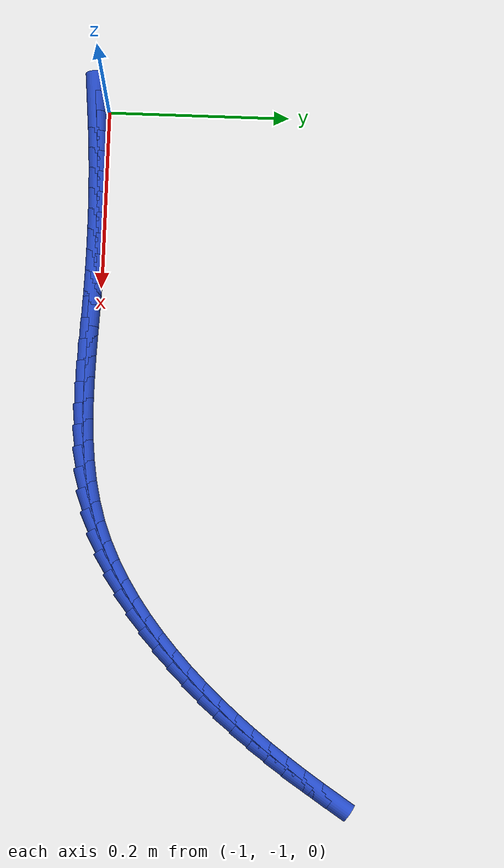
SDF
<sdf version="1.6">
 <world name="default">
  <model name="ground_plane">
   <static>1</static>
   <link name="link">
    <collision name="collision">
     <geometry><plane><normal>0 0 1</normal><size>100 100</size></plane></geometry>
     <surface><friction><ode><mu>100</mu><mu2>50</mu2></ode></friction></surface>
    </collision>
    <visual name="visual">
     <cast_shadows>0</cast_shadows>
     <geometry><plane><normal>0 0 1</normal><size>100 100</size></plane></geometry>
     <material>
      <script><uri>file://media/materials/scripts/gazebo.material</uri><name>Gazebo/WhiteGlow</name></script>
     </material>
    </visual>
   </link>
  </model>
  <model name="line">
   <link name="link_219">
    <pose>-1.0013469479623762 -1.014483170221935 0.01 0 1.57 0.0871544361112992</pose>
    <collision name="collision">
     <geometry><cylinder><radius>0.01</radius><length>0.08</length></cylinder></geometry>
    </collision>
    <visual name="visual">
     <material>
      <script><name>Gazebo/Blue</name><uri>file://media/materials/scripts/gazebo.material</uri></script>
     </material>
     <geometry><cylinder><radius>0.01</radius><length>0.08</length></cylinder></geometry>
    </visual>
   </link>
   <link name="link_220">
    <pose>-0.9786639839904309 -1.0125012285371393 0.01 0 1.57 0.07128460651138807</pose>
    <collision name="collision">
     <geometry><cylinder><radius>0.01</radius><length>0.08</length></cylinder></geometry>
    </collision>
    <visual name="visual">
     <material>
      <script><name>Gazebo/Blue</name><uri>file://media/materials/scripts/gazebo.material</uri></script>
     </material>
     <geometry><cylinder><radius>0.01</radius><length>0.08</length></cylinder></geometry>
    </visual>
   </link>
   <link name="link_221">
    <pose>-0.955876682412855 -1.01087408767381 0.01 0 1.57 0.0559129979954949</pose>
    <collision name="collision">
     <geometry><cylinder><radius>0.01</radius><length>0.08</length></cylinder></geometry>
    </collision>
    <visual name="visual">
     <material>
      <script><name>Gazebo/Blue</name><uri>file://media/materials/scripts/gazebo.material</uri></script>
     </material>
     <geometry><cylinder><radius>0.01</radius><length>0.08</length></cylinder></geometry>
    </visual>
   </link>
   <link name="link_222">
    <pose>-0.9329859396896257 -1.0095928621940413 0.01 0 1.57 0.04104090630134661</pose>
    <collision name="collision">
     <geometry><cylinder><radius>0.01</radius><length>0.08</length></cylinder></geometry>
    </collision>
    <visual name="visual">
     <material>
      <script><name>Gazebo/Blue</name><uri>file://media/materials/scripts/gazebo.material</uri></script>
     </material>
     <geometry><cylinder><radius>0.01</radius><length>0.08</length></cylinder></geometry>
    </visual>
   </link>
   <link name="link_223">
    <pose>-0.909992652280722 -1.0086486666599277 0.01 0 1.57 0.02666839965668159</pose>
    <collision name="collision">
     <geometry><cylinder><radius>0.01</radius><length>0.08</length></cylinder></geometry>
    </collision>
    <visual name="visual">
     <material>
      <script><name>Gazebo/Blue</name><uri>file://media/materials/scripts/gazebo.material</uri></script>
     </material>
     <geometry><cylinder><radius>0.01</radius><length>0.08</length></cylinder></geometry>
    </visual>
   </link>
   <link name="link_224">
    <pose>-0.8868977166461216 -1.0080326156335635 0.01 0 1.57 0.012794437022226709</pose>
    <collision name="collision">
     <geometry><cylinder><radius>0.01</radius><length>0.08</length></cylinder></geometry>
    </collision>
    <visual name="visual">
     <material>
      <script><name>Gazebo/Blue</name><uri>file://media/materials/scripts/gazebo.material</uri></script>
     </material>
     <geometry><cylinder><radius>0.01</radius><length>0.08</length></cylinder></geometry>
    </visual>
   </link>
   <link name="link_225">
    <pose>-0.8637020292458032 -1.007735823677044 0.01 0 1.57 -0.0005830159894517877</pose>
    <collision name="collision">
     <geometry><cylinder><radius>0.01</radius><length>0.08</length></cylinder></geometry>
    </collision>
    <visual name="visual">
     <material>
      <script><name>Gazebo/Blue</name><uri>file://media/materials/scripts/gazebo.material</uri></script>
     </material>
     <geometry><cylinder><radius>0.01</radius><length>0.08</length></cylinder></geometry>
    </visual>
   </link>
   <link name="link_226">
    <pose>-0.840406486539745 -1.0077494053524634 0.01 0 1.57 -0.013466874763109773</pose>
    <collision name="collision">
     <geometry><cylinder><radius>0.01</radius><length>0.08</length></cylinder></geometry>
    </collision>
    <visual name="visual">
     <material>
      <script><name>Gazebo/Blue</name><uri>file://media/materials/scripts/gazebo.material</uri></script>
     </material>
     <geometry><cylinder><radius>0.01</radius><length>0.08</length></cylinder></geometry>
    </visual>
   </link>
   <link name="link_227">
    <pose>-0.8170119849879252 -1.0080644752219163 0.01 0 1.57 -0.025856092680373494</pose>
    <collision name="collision">
     <geometry><cylinder><radius>0.01</radius><length>0.08</length></cylinder></geometry>
    </collision>
    <visual name="visual">
     <material>
      <script><name>Gazebo/Blue</name><uri>file://media/materials/scripts/gazebo.material</uri></script>
     </material>
     <geometry><cylinder><radius>0.01</radius><length>0.08</length></cylinder></geometry>
    </visual>
   </link>
   <link name="link_228">
    <pose>-0.7935194543937023 -1.0086720356686116 0.01 0 1.57 -0.03593926502927649</pose>
    <collision name="collision">
     <geometry><cylinder><radius>0.01</radius><length>0.08</length></cylinder></geometry>
    </collision>
    <visual name="visual">
     <material>
      <script><name>Gazebo/Blue</name><uri>file://media/materials/scripts/gazebo.material</uri></script>
     </material>
     <geometry><cylinder><radius>0.01</radius><length>0.08</length></cylinder></geometry>
    </visual>
   </link>
   <link name="link_229">
    <pose>-0.7699427119167445 -1.0095197314664413 0.01 0 1.57 -0.03922174190042788</pose>
    <collision name="collision">
     <geometry><cylinder><radius>0.01</radius><length>0.08</length></cylinder></geometry>
    </collision>
    <visual name="visual">
     <material>
      <script><name>Gazebo/Blue</name><uri>file://media/materials/scripts/gazebo.material</uri></script>
     </material>
     <geometry><cylinder><radius>0.01</radius><length>0.08</length></cylinder></geometry>
    </visual>
   </link>
   <link name="link_230">
    <pose>-0.7463279099182929 -1.0104464203732888 0.01 0 1.57 -0.03505726870997405</pose>
    <collision name="collision">
     <geometry><cylinder><radius>0.01</radius><length>0.08</length></cylinder></geometry>
    </collision>
    <visual name="visual">
     <material>
      <script><name>Gazebo/Blue</name><uri>file://media/materials/scripts/gazebo.material</uri></script>
     </material>
     <geometry><cylinder><radius>0.01</radius><length>0.08</length></cylinder></geometry>
    </visual>
   </link>
   <link name="link_231">
    <pose>-0.7227261909731965 -1.0112741713094544 0.01 0 1.57 -0.02340016952006652</pose>
    <collision name="collision">
     <geometry><cylinder><radius>0.01</radius><length>0.08</length></cylinder></geometry>
    </collision>
    <visual name="visual">
     <material>
      <script><name>Gazebo/Blue</name><uri>file://media/materials/scripts/gazebo.material</uri></script>
     </material>
     <geometry><cylinder><radius>0.01</radius><length>0.08</length></cylinder></geometry>
    </visual>
   </link>
   <link name="link_232">
    <pose>-0.6991886976563034 -1.0118250531952364 0.01 0 1.57 -0.004102156242686464</pose>
    <collision name="collision">
     <geometry><cylinder><radius>0.01</radius><length>0.08</length></cylinder></geometry>
    </collision>
    <visual name="visual">
     <material>
      <script><name>Gazebo/Blue</name><uri>file://media/materials/scripts/gazebo.material</uri></script>
     </material>
     <geometry><cylinder><radius>0.01</radius><length>0.08</length></cylinder></geometry>
    </visual>
   </link>
   <link name="link_233">
    <pose>-0.6757665725424626 -1.0119211349509343 0.01 0 1.57 0.023072029839129895</pose>
    <collision name="collision">
     <geometry><cylinder><radius>0.01</radius><length>0.08</length></cylinder></geometry>
    </collision>
    <visual name="visual">
     <material>
      <script><name>Gazebo/Blue</name><uri>file://media/materials/scripts/gazebo.material</uri></script>
     </material>
     <geometry><cylinder><radius>0.01</radius><length>0.08</length></cylinder></geometry>
    </visual>
   </link>
   <link name="link_234">
    <pose>-0.6525109582065213 -1.011384485496847 0.01 0 1.57 0.058415711169556225</pose>
    <collision name="collision">
     <geometry><cylinder><radius>0.01</radius><length>0.08</length></cylinder></geometry>
    </collision>
    <visual name="visual">
     <material>
      <script><name>Gazebo/Blue</name><uri>file://media/materials/scripts/gazebo.material</uri></script>
     </material>
     <geometry><cylinder><radius>0.01</radius><length>0.08</length></cylinder></geometry>
    </visual>
   </link>
   <link name="link_235">
    <pose>-0.6294729972233284 -1.010037173753274 0.01 0 1.57 0.10223306168648834</pose>
    <collision name="collision">
     <geometry><cylinder><radius>0.01</radius><length>0.08</length></cylinder></geometry>
    </collision>
    <visual name="visual">
     <material>
      <script><name>Gazebo/Blue</name><uri>file://media/materials/scripts/gazebo.material</uri></script>
     </material>
     <geometry><cylinder><radius>0.01</radius><length>0.08</length></cylinder></geometry>
    </visual>
   </link>
   <link name="link_236">
    <pose>-0.6067038321677323 -1.007701268640514 0.01 0 1.57 0.1547679205163647</pose>
    <collision name="collision">
     <geometry><cylinder><radius>0.01</radius><length>0.08</length></cylinder></geometry>
    </collision>
    <visual name="visual">
     <material>
      <script><name>Gazebo/Blue</name><uri>file://media/materials/scripts/gazebo.material</uri></script>
     </material>
     <geometry><cylinder><radius>0.01</radius><length>0.08</length></cylinder></geometry>
    </visual>
   </link>
   <link name="link_237">
    <pose>-0.5842546056145818 -1.0041988390788672 0.01 0 1.57 0.21610497535145173</pose>
    <collision name="collision">
     <geometry><cylinder><radius>0.01</radius><length>0.08</length></cylinder></geometry>
    </collision>
    <visual name="visual">
     <material>
      <script><name>Gazebo/Blue</name><uri>file://media/materials/scripts/gazebo.material</uri></script>
     </material>
     <geometry><cylinder><radius>0.01</radius><length>0.08</length></cylinder></geometry>
    </visual>
   </link>
   <link name="link_238">
    <pose>-0.5621764601387248 -0.9993519539886314 0.01 0 1.57 0.2860464660712523</pose>
    <collision name="collision">
     <geometry><cylinder><radius>0.01</radius><length>0.08</length></cylinder></geometry>
    </collision>
    <visual name="visual">
     <material>
      <script><name>Gazebo/Blue</name><uri>file://media/materials/scripts/gazebo.material</uri></script>
     </material>
     <geometry><cylinder><radius>0.01</radius><length>0.08</length></cylinder></geometry>
    </visual>
   </link>
   <link name="link_239">
    <pose>-0.5405205383150099 -0.9929826822901062 0.01 0 1.57 0.36228828915998545</pose>
    <collision name="collision">
     <geometry><cylinder><radius>0.01</radius><length>0.08</length></cylinder></geometry>
    </collision>
    <visual name="visual">
     <material>
      <script><name>Gazebo/Blue</name><uri>file://media/materials/scripts/gazebo.material</uri></script>
     </material>
     <geometry><cylinder><radius>0.01</radius><length>0.08</length></cylinder></geometry>
    </visual>
   </link>
   <link name="link_240">
    <pose>-0.5193344116253473 -0.9849527673933542 0.01 0 1.57 0.43512936127499985</pose>
    <collision name="collision">
     <geometry><cylinder><radius>0.01</radius><length>0.08</length></cylinder></geometry>
    </collision>
    <visual name="visual">
     <material>
      <script><name>Gazebo/Blue</name><uri>file://media/materials/scripts/gazebo.material</uri></script>
     </material>
     <geometry><cylinder><radius>0.01</radius><length>0.08</length></cylinder></geometry>
    </visual>
   </link>
   <link name="link_241">
    <pose>-0.49864655251024004 -0.9753361411717106 0.01 0 1.57 0.5015727094197767</pose>
    <collision name="collision">
     <geometry><cylinder><radius>0.01</radius><length>0.08</length></cylinder></geometry>
    </collision>
    <visual name="visual">
     <material>
      <script><name>Gazebo/Blue</name><uri>file://media/materials/scripts/gazebo.material</uri></script>
     </material>
     <geometry><cylinder><radius>0.01</radius><length>0.08</length></cylinder></geometry>
    </visual>
   </link>
   <link name="link_242">
    <pose>-0.47847907481491697 -0.9642773788638579 0.01 0 1.57 0.5619143369397166</pose>
    <collision name="collision">
     <geometry><cylinder><radius>0.01</radius><length>0.08</length></cylinder></geometry>
    </collision>
    <visual name="visual">
     <material>
      <script><name>Gazebo/Blue</name><uri>file://media/materials/scripts/gazebo.material</uri></script>
     </material>
     <geometry><cylinder><radius>0.01</radius><length>0.08</length></cylinder></geometry>
    </visual>
   </link>
   <link name="link_243">
    <pose>-0.458854088062021 -0.9519211037319758 0.01 0 1.57 0.6165783874386594</pose>
    <collision name="collision">
     <geometry><cylinder><radius>0.01</radius><length>0.08</length></cylinder></geometry>
    </collision>
    <visual name="visual">
     <material>
      <script><name>Gazebo/Blue</name><uri>file://media/materials/scripts/gazebo.material</uri></script>
     </material>
     <geometry><cylinder><radius>0.01</radius><length>0.08</length></cylinder></geometry>
    </visual>
   </link>
   <link name="link_244">
    <pose>-0.43979370177419563 -0.9384119390382446 0.01 0 1.57 0.6660495451544545</pose>
    <collision name="collision">
     <geometry><cylinder><radius>0.01</radius><length>0.08</length></cylinder></geometry>
    </collision>
    <visual name="visual">
     <material>
      <script><name>Gazebo/Blue</name><uri>file://media/materials/scripts/gazebo.material</uri></script>
     </material>
     <geometry><cylinder><radius>0.01</radius><length>0.08</length></cylinder></geometry>
    </visual>
   </link>
   <link name="link_245">
    <pose>-0.4213200254740839 -0.9238945080448445 0.01 0 1.57 0.7108273199464945</pose>
    <collision name="collision">
     <geometry><cylinder><radius>0.01</radius><length>0.08</length></cylinder></geometry>
    </collision>
    <visual name="visual">
     <material>
      <script><name>Gazebo/Blue</name><uri>file://media/materials/scripts/gazebo.material</uri></script>
     </material>
     <geometry><cylinder><radius>0.01</radius><length>0.08</length></cylinder></geometry>
    </visual>
   </link>
   <link name="link_246">
    <pose>-0.403455168684329 -0.9085134340139555 0.01 0 1.57 0.7513969559616817</pose>
    <collision name="collision">
     <geometry><cylinder><radius>0.01</radius><length>0.08</length></cylinder></geometry>
    </collision>
    <visual name="visual">
     <material>
      <script><name>Gazebo/Blue</name><uri>file://media/materials/scripts/gazebo.material</uri></script>
     </material>
     <geometry><cylinder><radius>0.01</radius><length>0.08</length></cylinder></geometry>
    </visual>
   </link>
   <link name="link_247">
    <pose>-0.38622124092757415 -0.8924133402077576 0.01 0 1.57 0.7882127718125289</pose>
    <collision name="collision">
     <geometry><cylinder><radius>0.01</radius><length>0.08</length></cylinder></geometry>
    </collision>
    <visual name="visual">
     <material>
      <script><name>Gazebo/Blue</name><uri>file://media/materials/scripts/gazebo.material</uri></script>
     </material>
     <geometry><cylinder><radius>0.01</radius><length>0.08</length></cylinder></geometry>
    </visual>
   </link>
   <link name="link_248">
    <pose>-0.36964035172646287 -0.8757388498884313 0.01 0 1.57 0.8218251466751614</pose>
    <collision name="collision">
     <geometry><cylinder><radius>0.01</radius><length>0.08</length></cylinder></geometry>
    </collision>
    <visual name="visual">
     <material>
      <script><name>Gazebo/Blue</name><uri>file://media/materials/scripts/gazebo.material</uri></script>
     </material>
     <geometry><cylinder><radius>0.01</radius><length>0.08</length></cylinder></geometry>
    </visual>
   </link>
   <link name="link_249">
    <pose>-0.35372508746083964 -0.8586197093808982 0.01 0 1.57 0.8531176590221353</pose>
    <collision name="collision">
     <geometry><cylinder><radius>0.01</radius><length>0.08</length></cylinder></geometry>
    </collision>
    <visual name="visual">
     <material>
      <script><name>Gazebo/Blue</name><uri>file://media/materials/scripts/gazebo.material</uri></script>
     </material>
     <geometry><cylinder><radius>0.01</radius><length>0.08</length></cylinder></geometry>
    </visual>
   </link>
   <link name="link_250">
    <pose>-0.338439459529409 -0.8411097817683748 0.01 0 1.57 0.8822005569310947</pose>
    <collision name="collision">
     <geometry><cylinder><radius>0.01</radius><length>0.08</length></cylinder></geometry>
    </collision>
    <visual name="visual">
     <material>
      <script><name>Gazebo/Blue</name><uri>file://media/materials/scripts/gazebo.material</uri></script>
     </material>
     <geometry><cylinder><radius>0.01</radius><length>0.08</length></cylinder></geometry>
    </visual>
   </link>
   <link name="link_251">
    <pose>-0.3237320314697499 -0.8232387976742778 0.01 0 1.57 0.9089557000851511</pose>
    <collision name="collision">
     <geometry><cylinder><radius>0.01</radius><length>0.08</length></cylinder></geometry>
    </collision>
    <visual name="visual">
     <material>
      <script><name>Gazebo/Blue</name><uri>file://media/materials/scripts/gazebo.material</uri></script>
     </material>
     <geometry><cylinder><radius>0.01</radius><length>0.08</length></cylinder></geometry>
    </visual>
   </link>
   <link name="link_252">
    <pose>-0.30955136037046155 -0.8050364776475075 0.01 0 1.57 0.9332915602735795</pose>
    <collision name="collision">
     <geometry><cylinder><radius>0.01</radius><length>0.08</length></cylinder></geometry>
    </collision>
    <visual name="visual">
     <material>
      <script><name>Gazebo/Blue</name><uri>file://media/materials/scripts/gazebo.material</uri></script>
     </material>
     <geometry><cylinder><radius>0.01</radius><length>0.08</length></cylinder></geometry>
    </visual>
   </link>
   <link name="link_253">
    <pose>-0.29584600332014294 -0.7865325422369633 0.01 0 1.57 0.9551402067897864</pose>
    <collision name="collision">
     <geometry><cylinder><radius>0.01</radius><length>0.08</length></cylinder></geometry>
    </collision>
    <visual name="visual">
     <material>
      <script><name>Gazebo/Blue</name><uri>file://media/materials/scripts/gazebo.material</uri></script>
     </material>
     <geometry><cylinder><radius>0.01</radius><length>0.08</length></cylinder></geometry>
    </visual>
   </link>
   <link name="link_254">
    <pose>-0.28256451740739275 -0.7677567119915444 0.01 0 1.57 0.9744537906188073</pose>
    <collision name="collision">
     <geometry><cylinder><radius>0.01</radius><length>0.08</length></cylinder></geometry>
    </collision>
    <visual name="visual">
     <material>
      <script><name>Gazebo/Blue</name><uri>file://media/materials/scripts/gazebo.material</uri></script>
     </material>
     <geometry><cylinder><radius>0.01</radius><length>0.08</length></cylinder></geometry>
    </visual>
   </link>
   <link name="link_255">
    <pose>-0.26965545972081034 -0.7487387074601511 0.01 0 1.57 0.9912009135526336</pose>
    <collision name="collision">
     <geometry><cylinder><radius>0.01</radius><length>0.08</length></cylinder></geometry>
    </collision>
    <visual name="visual">
     <material>
      <script><name>Gazebo/Blue</name><uri>file://media/materials/scripts/gazebo.material</uri></script>
     </material>
     <geometry><cylinder><radius>0.01</radius><length>0.08</length></cylinder></geometry>
    </visual>
   </link>
  </model>
 </world>
</sdf>
